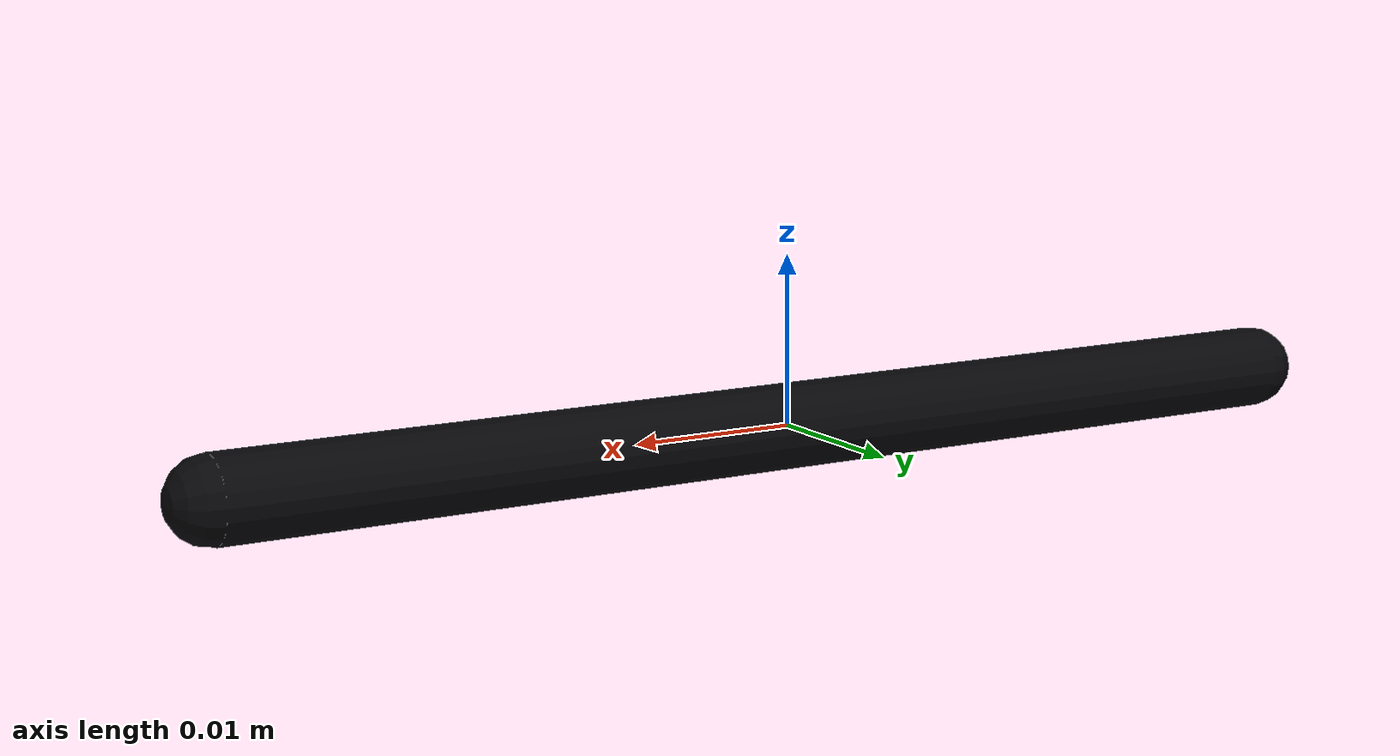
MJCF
<mujoco model="straw_piece">
  <asset>
    <!-- IR 열화상: 짚은 cold → near-black (검은 바닥과 거의 동화) -->
    <material name="straw_mat" rgba="0.025 0.025 0.035 1.0" specular="0.0" shininess="0.0"/>
  </asset>
  <worldbody>
    <body>
      <body name="object">
        <!-- 길이 ~7cm, 반지름 ~3mm capsule. 가볍지만 마찰↑로 잘 안 굴러감 -->
        <inertial pos="0 0 0.003" mass="0.005" diaginertia="2e-6 2e-6 1e-7"/>
        <geom name="straw_visual" type="capsule" size="0.0025 0.035"
              quat="0.7071 0 0.7071 0"
              material="straw_mat"
              friction="2.0 0.5 0.1"
              conaffinity="0" contype="0" group="1"/>
        <geom name="straw_collision" type="capsule" size="0.0025 0.035"
              quat="0.7071 0 0.7071 0"
              density="0" friction="2.0 0.5 0.1"
              solimp="0.998 0.998 0.001" solref="0.005 1"
              group="0" contype="8" conaffinity="4" rgba="0.8 0.8 0.8 0"/>
      </body>
      <site rgba="0 0 0 0" size="0.002" pos="0 0 0"        name="bottom_site"/>
      <site rgba="0 0 0 0" size="0.002" pos="0 0 0.006"    name="top_site"/>
      <site rgba="0 0 0 0" size="0.002" pos="0.005 0.005 0" name="horizontal_radius_site"/>
    </body>
  </worldbody>
</mujoco>
